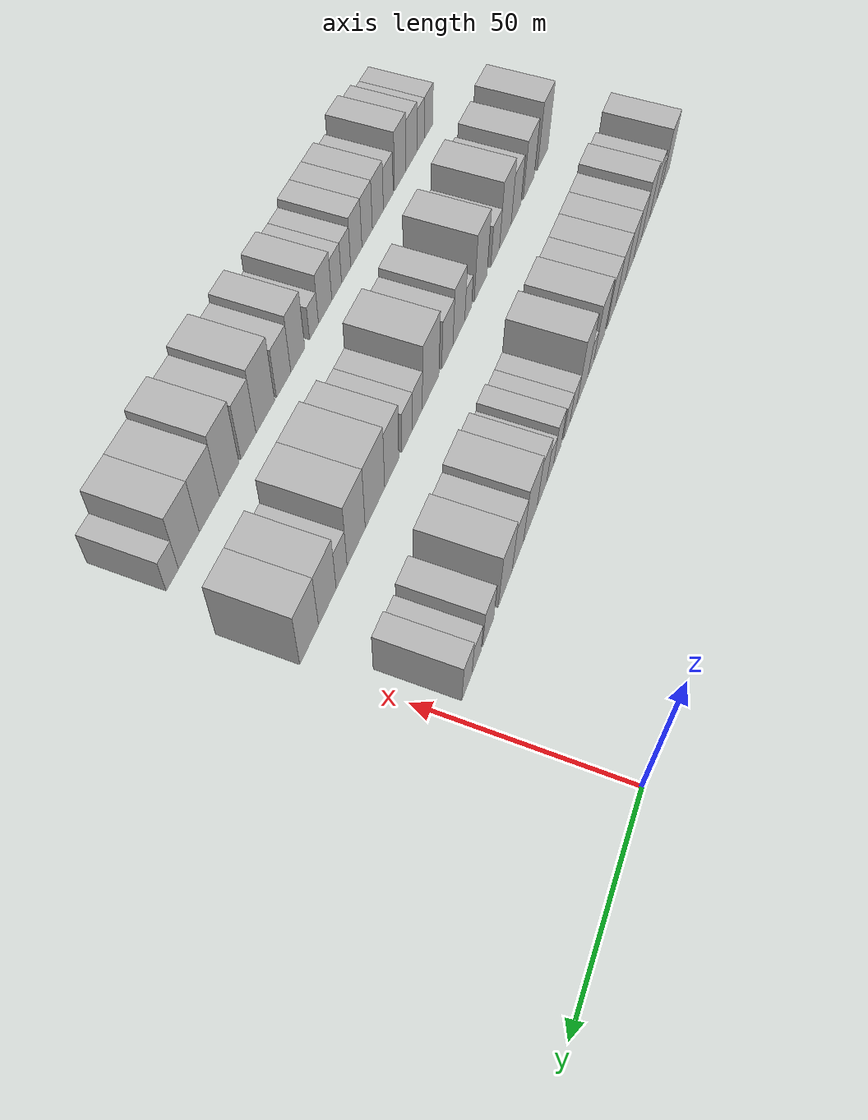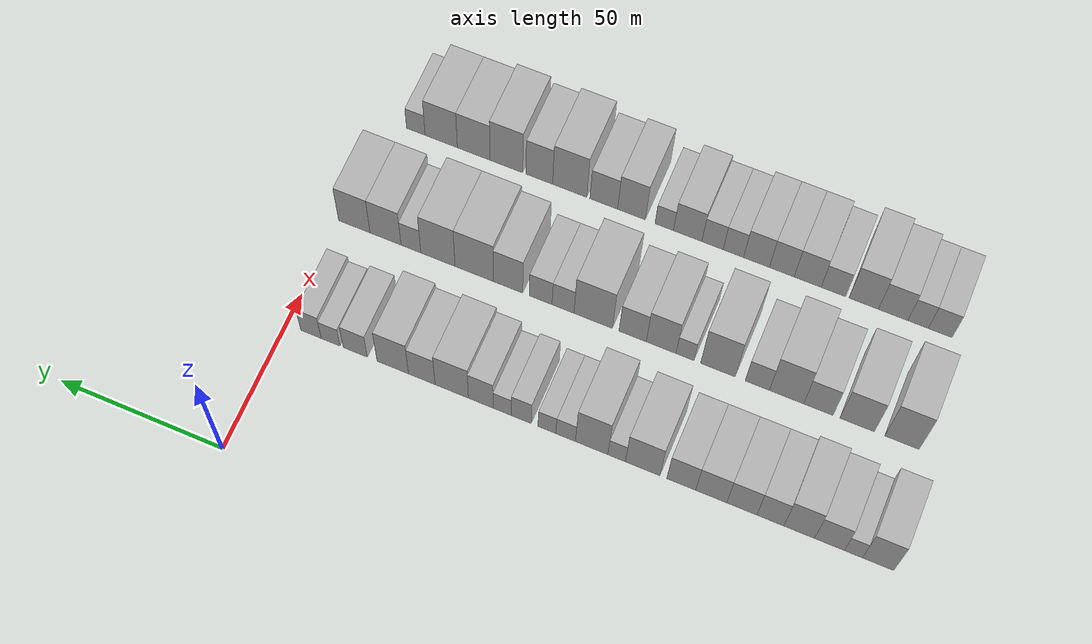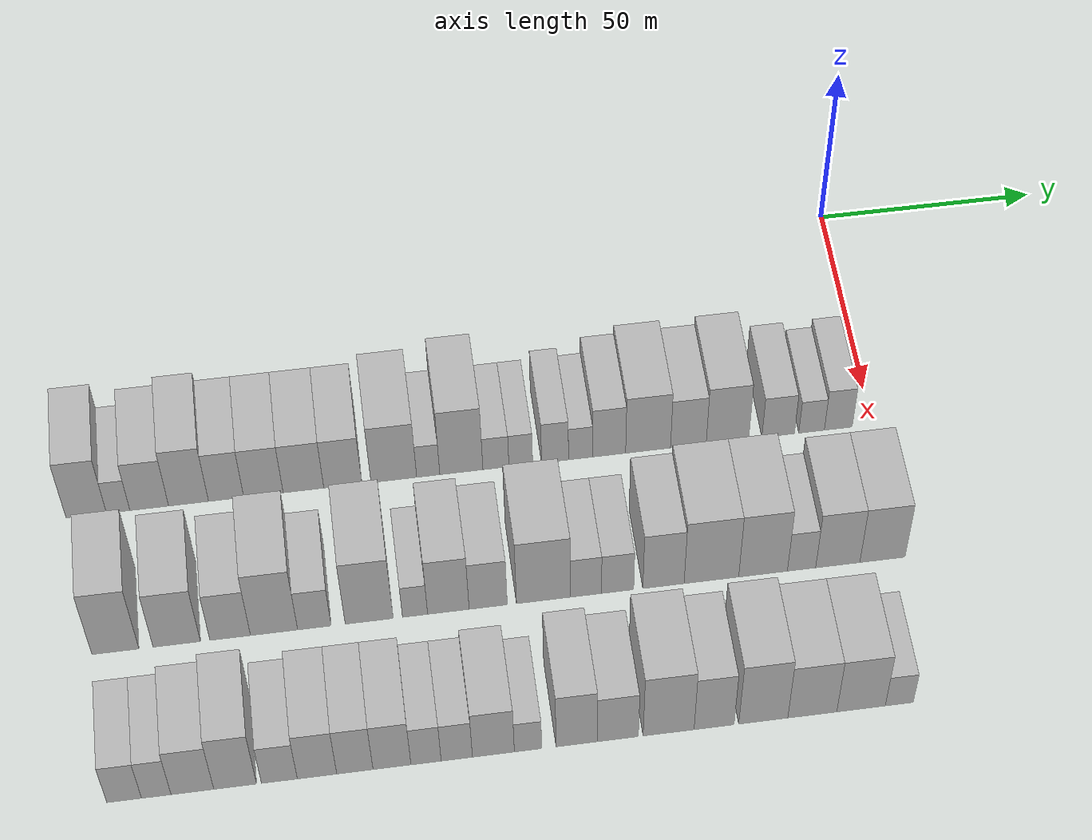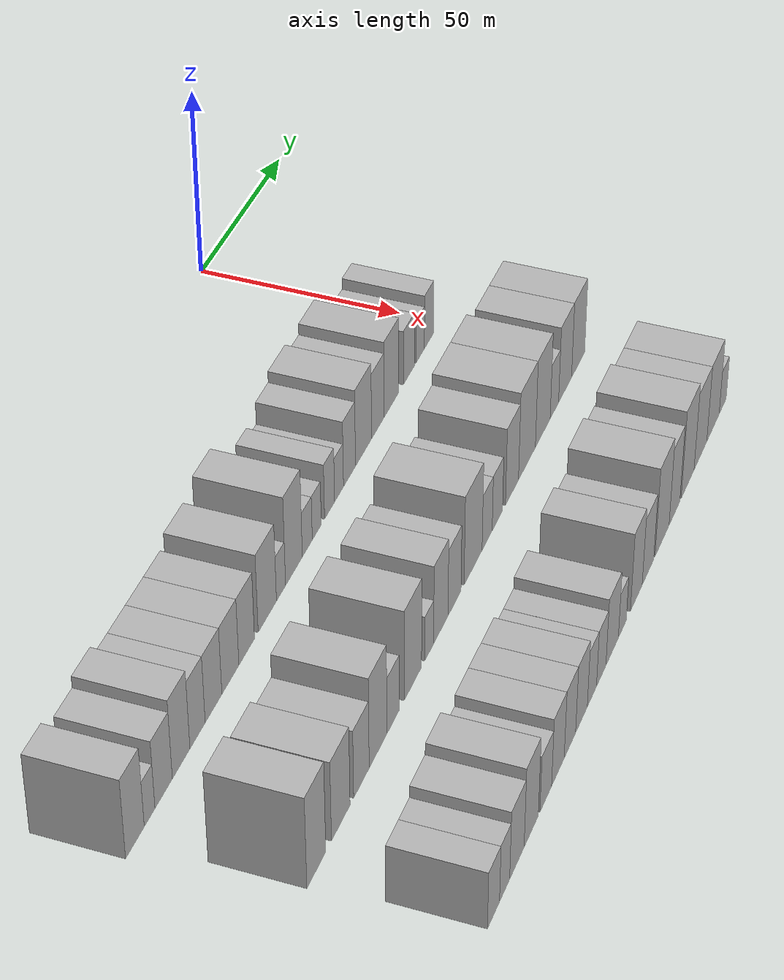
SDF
<sdf version="1.6">
 <world name="default">
  <model name="building_23">
   <static>1</static>
   <pose>50.0000 -175.4392 0 0.000000 0.000000 0.000000</pose>
   <link name="link">
    <pose>0 0 10.50 0 0 0</pose>
    <collision name="collision"><geometry><box><size>20.0000 8.8211 21.0000</size></box></geometry></collision>
    <visual name="visual">
     <cast_shadows>0</cast_shadows>
     <geometry><box><size>20.0000 8.8211 21.0000</size></box></geometry>
     <material>
      <script>
       <uri>model://HANNAS_wall/materials/scripts</uri>
       <uri>model://HANNAS_wall/materials/textures</uri>
       <name>vrc/HANNAS_wall</name>
      </script>
     </material>
    </visual>
   </link>
  </model>
  <model name="building_24">
   <static>1</static>
   <pose>50.0000 -168.4670 0 0.000000 0.000000 0.000000</pose>
   <link name="link">
    <pose>0 0 6.00 0 0 0</pose>
    <collision name="collision"><geometry><box><size>20.0000 5.1233 12.0000</size></box></geometry></collision>
    <visual name="visual">
     <cast_shadows>0</cast_shadows>
     <geometry><box><size>20.0000 5.1233 12.0000</size></box></geometry>
     <material>
      <script>
       <uri>model://HANNAS_wall/materials/scripts</uri>
       <uri>model://HANNAS_wall/materials/textures</uri>
       <name>vrc/HANNAS_wall</name>
      </script>
     </material>
    </visual>
   </link>
  </model>
  <model name="building_25">
   <static>1</static>
   <pose>50.0000 -161.6642 0 0.000000 0.000000 0.000000</pose>
   <link name="link">
    <pose>0 0 9.00 0 0 0</pose>
    <collision name="collision"><geometry><box><size>20.0000 8.4823 18.0000</size></box></geometry></collision>
    <visual name="visual">
     <cast_shadows>0</cast_shadows>
     <geometry><box><size>20.0000 8.4823 18.0000</size></box></geometry>
     <material>
      <script>
       <uri>model://HANNAS_wall/materials/scripts</uri>
       <uri>model://HANNAS_wall/materials/textures</uri>
       <name>vrc/HANNAS_wall</name>
      </script>
     </material>
    </visual>
   </link>
  </model>
  <model name="building_26">
   <static>1</static>
   <pose>50.0000 -153.0441 0 0.000000 0.000000 0.000000</pose>
   <link name="link">
    <pose>0 0 10.50 0 0 0</pose>
    <collision name="collision"><geometry><box><size>20.0000 8.7578 21.0000</size></box></geometry></collision>
    <visual name="visual">
     <cast_shadows>0</cast_shadows>
     <geometry><box><size>20.0000 8.7578 21.0000</size></box></geometry>
     <material>
      <script>
       <uri>model://HANNAS_wall/materials/scripts</uri>
       <uri>model://HANNAS_wall/materials/textures</uri>
       <name>vrc/HANNAS_wall</name>
      </script>
     </material>
    </visual>
   </link>
  </model>
  <model name="building_27">
   <static>1</static>
   <pose>50.0000 -144.7864 0 0.000000 0.000000 0.000000</pose>
   <link name="link">
    <pose>0 0 9.00 0 0 0</pose>
    <collision name="collision"><geometry><box><size>20.0000 7.7576 18.0000</size></box></geometry></collision>
    <visual name="visual">
     <cast_shadows>0</cast_shadows>
     <geometry><box><size>20.0000 7.7576 18.0000</size></box></geometry>
     <material>
      <script>
       <uri>model://HANNAS_wall/materials/scripts</uri>
       <uri>model://HANNAS_wall/materials/textures</uri>
       <name>vrc/HANNAS_wall</name>
      </script>
     </material>
    </visual>
   </link>
  </model>
  <model name="building_28">
   <static>1</static>
   <pose>50.0000 -136.5744 0 0.000000 0.000000 0.000000</pose>
   <link name="link">
    <pose>0 0 9.00 0 0 0</pose>
    <collision name="collision"><geometry><box><size>20.0000 8.6665 18.0000</size></box></geometry></collision>
    <visual name="visual">
     <cast_shadows>0</cast_shadows>
     <geometry><box><size>20.0000 8.6665 18.0000</size></box></geometry>
     <material>
      <script>
       <uri>model://HANNAS_wall/materials/scripts</uri>
       <uri>model://HANNAS_wall/materials/textures</uri>
       <name>vrc/HANNAS_wall</name>
      </script>
     </material>
    </visual>
   </link>
  </model>
  <model name="building_29">
   <static>1</static>
   <pose>50.0000 -127.7467 0 0.000000 0.000000 0.000000</pose>
   <link name="link">
    <pose>0 0 9.00 0 0 0</pose>
    <collision name="collision"><geometry><box><size>20.0000 8.9890 18.0000</size></box></geometry></collision>
    <visual name="visual">
     <cast_shadows>0</cast_shadows>
     <geometry><box><size>20.0000 8.9890 18.0000</size></box></geometry>
     <material>
      <script>
       <uri>model://HANNAS_wall/materials/scripts</uri>
       <uri>model://HANNAS_wall/materials/textures</uri>
       <name>vrc/HANNAS_wall</name>
      </script>
     </material>
    </visual>
   </link>
  </model>
  <model name="building_30">
   <static>1</static>
   <pose>50.0000 -119.0309 0 0.000000 0.000000 0.000000</pose>
   <link name="link">
    <pose>0 0 9.00 0 0 0</pose>
    <collision name="collision"><geometry><box><size>20.0000 8.4425 18.0000</size></box></geometry></collision>
    <visual name="visual">
     <cast_shadows>0</cast_shadows>
     <geometry><box><size>20.0000 8.4425 18.0000</size></box></geometry>
     <material>
      <script>
       <uri>model://HANNAS_wall/materials/scripts</uri>
       <uri>model://HANNAS_wall/materials/textures</uri>
       <name>vrc/HANNAS_wall</name>
      </script>
     </material>
    </visual>
   </link>
  </model>
  <model name="building_31">
   <static>1</static>
   <pose>50.0000 -107.7357 0 0.000000 0.000000 0.000000</pose>
   <link name="link">
    <pose>0 0 10.50 0 0 0</pose>
    <collision name="collision"><geometry><box><size>20.0000 10.1479 21.0000</size></box></geometry></collision>
    <visual name="visual">
     <cast_shadows>0</cast_shadows>
     <geometry><box><size>20.0000 10.1479 21.0000</size></box></geometry>
     <material>
      <script>
       <uri>model://HANNAS_wall/materials/scripts</uri>
       <uri>model://HANNAS_wall/materials/textures</uri>
       <name>vrc/HANNAS_wall</name>
      </script>
     </material>
    </visual>
   </link>
  </model>
  <model name="building_32">
   <static>1</static>
   <pose>50.0000 -100.0869 0 0.000000 0.000000 0.000000</pose>
   <link name="link">
    <pose>0 0 6.00 0 0 0</pose>
    <collision name="collision"><geometry><box><size>20.0000 5.1497 12.0000</size></box></geometry></collision>
    <visual name="visual">
     <cast_shadows>0</cast_shadows>
     <geometry><box><size>20.0000 5.1497 12.0000</size></box></geometry>
     <material>
      <script>
       <uri>model://HANNAS_wall/materials/scripts</uri>
       <uri>model://HANNAS_wall/materials/textures</uri>
       <name>vrc/HANNAS_wall</name>
      </script>
     </material>
    </visual>
   </link>
  </model>
  <model name="building_33">
   <static>1</static>
   <pose>50.0000 -92.7052 0 0.000000 0.000000 0.000000</pose>
   <link name="link">
    <pose>0 0 12.00 0 0 0</pose>
    <collision name="collision"><geometry><box><size>20.0000 9.6137 24.0000</size></box></geometry></collision>
    <visual name="visual">
     <cast_shadows>0</cast_shadows>
     <geometry><box><size>20.0000 9.6137 24.0000</size></box></geometry>
     <material>
      <script>
       <uri>model://HANNAS_wall/materials/scripts</uri>
       <uri>model://HANNAS_wall/materials/textures</uri>
       <name>vrc/HANNAS_wall</name>
      </script>
     </material>
    </visual>
   </link>
  </model>
  <model name="building_34">
   <static>1</static>
   <pose>50.0000 -84.9929 0 0.000000 0.000000 0.000000</pose>
   <link name="link">
    <pose>0 0 6.00 0 0 0</pose>
    <collision name="collision"><geometry><box><size>20.0000 5.8108 12.0000</size></box></geometry></collision>
    <visual name="visual">
     <cast_shadows>0</cast_shadows>
     <geometry><box><size>20.0000 5.8108 12.0000</size></box></geometry>
     <material>
      <script>
       <uri>model://HANNAS_wall/materials/scripts</uri>
       <uri>model://HANNAS_wall/materials/textures</uri>
       <name>vrc/HANNAS_wall</name>
      </script>
     </material>
    </visual>
   </link>
  </model>
  <model name="building_35">
   <static>1</static>
   <pose>50.0000 -79.4338 0 0.000000 0.000000 0.000000</pose>
   <link name="link">
    <pose>0 0 6.00 0 0 0</pose>
    <collision name="collision"><geometry><box><size>20.0000 5.3074 12.0000</size></box></geometry></collision>
    <visual name="visual">
     <cast_shadows>0</cast_shadows>
     <geometry><box><size>20.0000 5.3074 12.0000</size></box></geometry>
     <material>
      <script>
       <uri>model://HANNAS_wall/materials/scripts</uri>
       <uri>model://HANNAS_wall/materials/textures</uri>
       <name>vrc/HANNAS_wall</name>
      </script>
     </material>
    </visual>
   </link>
  </model>
  <model name="building_36">
   <static>1</static>
   <pose>50.0000 -71.7630 0 0.000000 0.000000 0.000000</pose>
   <link name="link">
    <pose>0 0 7.50 0 0 0</pose>
    <collision name="collision"><geometry><box><size>20.0000 6.0342 15.0000</size></box></geometry></collision>
    <visual name="visual">
     <cast_shadows>0</cast_shadows>
     <geometry><box><size>20.0000 6.0342 15.0000</size></box></geometry>
     <material>
      <script>
       <uri>model://HANNAS_wall/materials/scripts</uri>
       <uri>model://HANNAS_wall/materials/textures</uri>
       <name>vrc/HANNAS_wall</name>
      </script>
     </material>
    </visual>
   </link>
  </model>
  <model name="building_37">
   <static>1</static>
   <pose>50.0000 -66.0414 0 0.000000 0.000000 0.000000</pose>
   <link name="link">
    <pose>0 0 6.00 0 0 0</pose>
    <collision name="collision"><geometry><box><size>20.0000 5.4089 12.0000</size></box></geometry></collision>
    <visual name="visual">
     <cast_shadows>0</cast_shadows>
     <geometry><box><size>20.0000 5.4089 12.0000</size></box></geometry>
     <material>
      <script>
       <uri>model://HANNAS_wall/materials/scripts</uri>
       <uri>model://HANNAS_wall/materials/textures</uri>
       <name>vrc/HANNAS_wall</name>
      </script>
     </material>
    </visual>
   </link>
  </model>
  <model name="building_38">
   <static>1</static>
   <pose>50.0000 -59.6178 0 0.000000 0.000000 0.000000</pose>
   <link name="link">
    <pose>0 0 9.00 0 0 0</pose>
    <collision name="collision"><geometry><box><size>20.0000 7.4382 18.0000</size></box></geometry></collision>
    <visual name="visual">
     <cast_shadows>0</cast_shadows>
     <geometry><box><size>20.0000 7.4382 18.0000</size></box></geometry>
     <material>
      <script>
       <uri>model://HANNAS_wall/materials/scripts</uri>
       <uri>model://HANNAS_wall/materials/textures</uri>
       <name>vrc/HANNAS_wall</name>
      </script>
     </material>
    </visual>
   </link>
  </model>
  <model name="building_39">
   <static>1</static>
   <pose>50.0000 -50.8414 0 0.000000 0.000000 0.000000</pose>
   <link name="link">
    <pose>0 0 10.50 0 0 0</pose>
    <collision name="collision"><geometry><box><size>20.0000 10.1146 21.0000</size></box></geometry></collision>
    <visual name="visual">
     <cast_shadows>0</cast_shadows>
     <geometry><box><size>20.0000 10.1146 21.0000</size></box></geometry>
     <material>
      <script>
       <uri>model://HANNAS_wall/materials/scripts</uri>
       <uri>model://HANNAS_wall/materials/textures</uri>
       <name>vrc/HANNAS_wall</name>
      </script>
     </material>
    </visual>
   </link>
  </model>
  <model name="building_40">
   <static>1</static>
   <pose>50.0000 -41.7436 0 0.000000 0.000000 0.000000</pose>
   <link name="link">
    <pose>0 0 9.00 0 0 0</pose>
    <collision name="collision"><geometry><box><size>20.0000 8.0809 18.0000</size></box></geometry></collision>
    <visual name="visual">
     <cast_shadows>0</cast_shadows>
     <geometry><box><size>20.0000 8.0809 18.0000</size></box></geometry>
     <material>
      <script>
       <uri>model://HANNAS_wall/materials/scripts</uri>
       <uri>model://HANNAS_wall/materials/textures</uri>
       <name>vrc/HANNAS_wall</name>
      </script>
     </material>
    </visual>
   </link>
  </model>
  <model name="building_41">
   <static>1</static>
   <pose>50.0000 -32.8916 0 0.000000 0.000000 0.000000</pose>
   <link name="link">
    <pose>0 0 10.50 0 0 0</pose>
    <collision name="collision"><geometry><box><size>20.0000 9.6231 21.0000</size></box></geometry></collision>
    <visual name="visual">
     <cast_shadows>0</cast_shadows>
     <geometry><box><size>20.0000 9.6231 21.0000</size></box></geometry>
     <material>
      <script>
       <uri>model://HANNAS_wall/materials/scripts</uri>
       <uri>model://HANNAS_wall/materials/textures</uri>
       <name>vrc/HANNAS_wall</name>
      </script>
     </material>
    </visual>
   </link>
  </model>
  <model name="building_42">
   <static>1</static>
   <pose>50.0000 -21.3839 0 0.000000 0.000000 0.000000</pose>
   <link name="link">
    <pose>0 0 7.50 0 0 0</pose>
    <collision name="collision"><geometry><box><size>20.0000 7.3924 15.0000</size></box></geometry></collision>
    <visual name="visual">
     <cast_shadows>0</cast_shadows>
     <geometry><box><size>20.0000 7.3924 15.0000</size></box></geometry>
     <material>
      <script>
       <uri>model://HANNAS_wall/materials/scripts</uri>
       <uri>model://HANNAS_wall/materials/textures</uri>
       <name>vrc/HANNAS_wall</name>
      </script>
     </material>
    </visual>
   </link>
  </model>
  <model name="building_43">
   <static>1</static>
   <pose>50.0000 -13.7797 0 0.000000 0.000000 0.000000</pose>
   <link name="link">
    <pose>0 0 6.00 0 0 0</pose>
    <collision name="collision"><geometry><box><size>20.0000 5.8159 12.0000</size></box></geometry></collision>
    <visual name="visual">
     <cast_shadows>0</cast_shadows>
     <geometry><box><size>20.0000 5.8159 12.0000</size></box></geometry>
     <material>
      <script>
       <uri>model://HANNAS_wall/materials/scripts</uri>
       <uri>model://HANNAS_wall/materials/textures</uri>
       <name>vrc/HANNAS_wall</name>
      </script>
     </material>
    </visual>
   </link>
  </model>
  <model name="building_44">
   <static>1</static>
   <pose>50.0000 -7.6938 0 0.000000 0.000000 0.000000</pose>
   <link name="link">
    <pose>0 0 7.50 0 0 0</pose>
    <collision name="collision"><geometry><box><size>20.0000 6.3559 15.0000</size></box></geometry></collision>
    <visual name="visual">
     <cast_shadows>0</cast_shadows>
     <geometry><box><size>20.0000 6.3559 15.0000</size></box></geometry>
     <material>
      <script>
       <uri>model://HANNAS_wall/materials/scripts</uri>
       <uri>model://HANNAS_wall/materials/textures</uri>
       <name>vrc/HANNAS_wall</name>
      </script>
     </material>
    </visual>
   </link>
  </model>
  <model name="building_109">
   <static>1</static>
   <pose>85.0000 -170.3287 0 0.000000 0.000000 0.000000</pose>
   <link name="link">
    <pose>0 0 12.00 0 0 0</pose>
    <collision name="collision"><geometry><box><size>20.0000 9.9184 24.0000</size></box></geometry></collision>
    <visual name="visual">
     <cast_shadows>0</cast_shadows>
     <geometry><box><size>20.0000 9.9184 24.0000</size></box></geometry>
     <material>
      <script>
       <uri>model://HANNAS_wall/materials/scripts</uri>
       <uri>model://HANNAS_wall/materials/textures</uri>
       <name>vrc/HANNAS_wall</name>
      </script>
     </material>
    </visual>
   </link>
  </model>
  <model name="building_110">
   <static>1</static>
   <pose>85.0000 -157.3529 0 0.000000 0.000000 0.000000</pose>
   <link name="link">
    <pose>0 0 10.50 0 0 0</pose>
    <collision name="collision"><geometry><box><size>20.0000 10.0331 21.0000</size></box></geometry></collision>
    <visual name="visual">
     <cast_shadows>0</cast_shadows>
     <geometry><box><size>20.0000 10.0331 21.0000</size></box></geometry>
     <material>
      <script>
       <uri>model://HANNAS_wall/materials/scripts</uri>
       <uri>model://HANNAS_wall/materials/textures</uri>
       <name>vrc/HANNAS_wall</name>
      </script>
     </material>
    </visual>
   </link>
  </model>
  <model name="building_111">
   <static>1</static>
   <pose>85.0000 -146.0318 0 0.000000 0.000000 0.000000</pose>
   <link name="link">
    <pose>0 0 9.00 0 0 0</pose>
    <collision name="collision"><geometry><box><size>20.0000 8.6090 18.0000</size></box></geometry></collision>
    <visual name="visual">
     <cast_shadows>0</cast_shadows>
     <geometry><box><size>20.0000 8.6090 18.0000</size></box></geometry>
     <material>
      <script>
       <uri>model://HANNAS_wall/materials/scripts</uri>
       <uri>model://HANNAS_wall/materials/textures</uri>
       <name>vrc/HANNAS_wall</name>
      </script>
     </material>
    </visual>
   </link>
  </model>
  <model name="building_112">
   <static>1</static>
   <pose>85.0000 -136.7033 0 0.000000 0.000000 0.000000</pose>
   <link name="link">
    <pose>0 0 12.00 0 0 0</pose>
    <collision name="collision"><geometry><box><size>20.0000 10.0480 24.0000</size></box></geometry></collision>
    <visual name="visual">
     <cast_shadows>0</cast_shadows>
     <geometry><box><size>20.0000 10.0480 24.0000</size></box></geometry>
     <material>
      <script>
       <uri>model://HANNAS_wall/materials/scripts</uri>
       <uri>model://HANNAS_wall/materials/textures</uri>
       <name>vrc/HANNAS_wall</name>
      </script>
     </material>
    </visual>
   </link>
  </model>
  <model name="building_113">
   <static>1</static>
   <pose>85.0000 -128.1005 0 0.000000 0.000000 0.000000</pose>
   <link name="link">
    <pose>0 0 7.50 0 0 0</pose>
    <collision name="collision"><geometry><box><size>20.0000 7.1576 15.0000</size></box></geometry></collision>
    <visual name="visual">
     <cast_shadows>0</cast_shadows>
     <geometry><box><size>20.0000 7.1576 15.0000</size></box></geometry>
     <material>
      <script>
       <uri>model://HANNAS_wall/materials/scripts</uri>
       <uri>model://HANNAS_wall/materials/textures</uri>
       <name>vrc/HANNAS_wall</name>
      </script>
     </material>
    </visual>
   </link>
  </model>
  <model name="building_114">
   <static>1</static>
   <pose>85.0000 -116.3873 0 0.000000 0.000000 0.000000</pose>
   <link name="link">
    <pose>0 0 12.00 0 0 0</pose>
    <collision name="collision"><geometry><box><size>20.0000 10.2689 24.0000</size></box></geometry></collision>
    <visual name="visual">
     <cast_shadows>0</cast_shadows>
     <geometry><box><size>20.0000 10.2689 24.0000</size></box></geometry>
     <material>
      <script>
       <uri>model://HANNAS_wall/materials/scripts</uri>
       <uri>model://HANNAS_wall/materials/textures</uri>
       <name>vrc/HANNAS_wall</name>
      </script>
     </material>
    </visual>
   </link>
  </model>
  <model name="building_115">
   <static>1</static>
   <pose>85.0000 -106.5623 0 0.000000 0.000000 0.000000</pose>
   <link name="link">
    <pose>0 0 6.00 0 0 0</pose>
    <collision name="collision"><geometry><box><size>20.0000 5.3810 12.0000</size></box></geometry></collision>
    <visual name="visual">
     <cast_shadows>0</cast_shadows>
     <geometry><box><size>20.0000 5.3810 12.0000</size></box></geometry>
     <material>
      <script>
       <uri>model://HANNAS_wall/materials/scripts</uri>
       <uri>model://HANNAS_wall/materials/textures</uri>
       <name>vrc/HANNAS_wall</name>
      </script>
     </material>
    </visual>
   </link>
  </model>
  <model name="building_116">
   <static>1</static>
   <pose>85.0000 -99.4042 0 0.000000 0.000000 0.000000</pose>
   <link name="link">
    <pose>0 0 10.50 0 0 0</pose>
    <collision name="collision"><geometry><box><size>20.0000 8.9353 21.0000</size></box></geometry></collision>
    <visual name="visual">
     <cast_shadows>0</cast_shadows>
     <geometry><box><size>20.0000 8.9353 21.0000</size></box></geometry>
     <material>
      <script>
       <uri>model://HANNAS_wall/materials/scripts</uri>
       <uri>model://HANNAS_wall/materials/textures</uri>
       <name>vrc/HANNAS_wall</name>
      </script>
     </material>
    </visual>
   </link>
  </model>
  <model name="building_117">
   <static>1</static>
   <pose>85.0000 -90.8245 0 0.000000 0.000000 0.000000</pose>
   <link name="link">
    <pose>0 0 9.00 0 0 0</pose>
    <collision name="collision"><geometry><box><size>20.0000 8.2241 18.0000</size></box></geometry></collision>
    <visual name="visual">
     <cast_shadows>0</cast_shadows>
     <geometry><box><size>20.0000 8.2241 18.0000</size></box></geometry>
     <material>
      <script>
       <uri>model://HANNAS_wall/materials/scripts</uri>
       <uri>model://HANNAS_wall/materials/textures</uri>
       <name>vrc/HANNAS_wall</name>
      </script>
     </material>
    </visual>
   </link>
  </model>
  <model name="building_118">
   <static>1</static>
   <pose>85.0000 -78.8649 0 0.000000 0.000000 0.000000</pose>
   <link name="link">
    <pose>0 0 12.00 0 0 0</pose>
    <collision name="collision"><geometry><box><size>20.0000 11.6950 24.0000</size></box></geometry></collision>
    <visual name="visual">
     <cast_shadows>0</cast_shadows>
     <geometry><box><size>20.0000 11.6950 24.0000</size></box></geometry>
     <material>
      <script>
       <uri>model://HANNAS_wall/materials/scripts</uri>
       <uri>model://HANNAS_wall/materials/textures</uri>
       <name>vrc/HANNAS_wall</name>
      </script>
     </material>
    </visual>
   </link>
  </model>
  <model name="building_119">
   <static>1</static>
   <pose>85.0000 -69.6610 0 0.000000 0.000000 0.000000</pose>
   <link name="link">
    <pose>0 0 7.50 0 0 0</pose>
    <collision name="collision"><geometry><box><size>20.0000 6.7129 15.0000</size></box></geometry></collision>
    <visual name="visual">
     <cast_shadows>0</cast_shadows>
     <geometry><box><size>20.0000 6.7129 15.0000</size></box></geometry>
     <material>
      <script>
       <uri>model://HANNAS_wall/materials/scripts</uri>
       <uri>model://HANNAS_wall/materials/textures</uri>
       <name>vrc/HANNAS_wall</name>
      </script>
     </material>
    </visual>
   </link>
  </model>
  <model name="building_120">
   <static>1</static>
   <pose>85.0000 -62.8131 0 0.000000 0.000000 0.000000</pose>
   <link name="link">
    <pose>0 0 7.50 0 0 0</pose>
    <collision name="collision"><geometry><box><size>20.0000 6.9829 15.0000</size></box></geometry></collision>
    <visual name="visual">
     <cast_shadows>0</cast_shadows>
     <geometry><box><size>20.0000 6.9829 15.0000</size></box></geometry>
     <material>
      <script>
       <uri>model://HANNAS_wall/materials/scripts</uri>
       <uri>model://HANNAS_wall/materials/textures</uri>
       <name>vrc/HANNAS_wall</name>
      </script>
     </material>
    </visual>
   </link>
  </model>
  <model name="building_121">
   <static>1</static>
   <pose>85.0000 -52.8237 0 0.000000 0.000000 0.000000</pose>
   <link name="link">
    <pose>0 0 10.50 0 0 0</pose>
    <collision name="collision"><geometry><box><size>20.0000 8.9958 21.0000</size></box></geometry></collision>
    <visual name="visual">
     <cast_shadows>0</cast_shadows>
     <geometry><box><size>20.0000 8.9958 21.0000</size></box></geometry>
     <material>
      <script>
       <uri>model://HANNAS_wall/materials/scripts</uri>
       <uri>model://HANNAS_wall/materials/textures</uri>
       <name>vrc/HANNAS_wall</name>
      </script>
     </material>
    </visual>
   </link>
  </model>
  <model name="building_122">
   <static>1</static>
   <pose>85.0000 -42.3609 0 0.000000 0.000000 0.000000</pose>
   <link name="link">
    <pose>0 0 12.00 0 0 0</pose>
    <collision name="collision"><geometry><box><size>20.0000 11.9298 24.0000</size></box></geometry></collision>
    <visual name="visual">
     <cast_shadows>0</cast_shadows>
     <geometry><box><size>20.0000 11.9298 24.0000</size></box></geometry>
     <material>
      <script>
       <uri>model://HANNAS_wall/materials/scripts</uri>
       <uri>model://HANNAS_wall/materials/textures</uri>
       <name>vrc/HANNAS_wall</name>
      </script>
     </material>
    </visual>
   </link>
  </model>
  <model name="building_123">
   <static>1</static>
   <pose>85.0000 -31.0570 0 0.000000 0.000000 0.000000</pose>
   <link name="link">
    <pose>0 0 12.00 0 0 0</pose>
    <collision name="collision"><geometry><box><size>20.0000 10.6778 24.0000</size></box></geometry></collision>
    <visual name="visual">
     <cast_shadows>0</cast_shadows>
     <geometry><box><size>20.0000 10.6778 24.0000</size></box></geometry>
     <material>
      <script>
       <uri>model://HANNAS_wall/materials/scripts</uri>
       <uri>model://HANNAS_wall/materials/textures</uri>
       <name>vrc/HANNAS_wall</name>
      </script>
     </material>
    </visual>
   </link>
  </model>
  <model name="building_124">
   <static>1</static>
   <pose>85.0000 -22.6110 0 0.000000 0.000000 0.000000</pose>
   <link name="link">
    <pose>0 0 7.50 0 0 0</pose>
    <collision name="collision"><geometry><box><size>20.0000 6.2142 15.0000</size></box></geometry></collision>
    <visual name="visual">
     <cast_shadows>0</cast_shadows>
     <geometry><box><size>20.0000 6.2142 15.0000</size></box></geometry>
     <material>
      <script>
       <uri>model://HANNAS_wall/materials/scripts</uri>
       <uri>model://HANNAS_wall/materials/textures</uri>
       <name>vrc/HANNAS_wall</name>
      </script>
     </material>
    </visual>
   </link>
  </model>
  <model name="building_125">
   <static>1</static>
   <pose>85.0000 -14.6379 0 0.000000 0.000000 0.000000</pose>
   <link name="link">
    <pose>0 0 10.50 0 0 0</pose>
    <collision name="collision"><geometry><box><size>20.0000 9.7320 21.0000</size></box></geometry></collision>
    <visual name="visual">
     <cast_shadows>0</cast_shadows>
     <geometry><box><size>20.0000 9.7320 21.0000</size></box></geometry>
     <material>
      <script>
       <uri>model://HANNAS_wall/materials/scripts</uri>
       <uri>model://HANNAS_wall/materials/textures</uri>
       <name>vrc/HANNAS_wall</name>
      </script>
     </material>
    </visual>
   </link>
  </model>
  <model name="building_126">
   <static>1</static>
   <pose>85.0000 -4.7849 0 0.000000 0.000000 0.000000</pose>
   <link name="link">
    <pose>0 0 10.50 0 0 0</pose>
    <collision name="collision"><geometry><box><size>20.0000 9.9741 21.0000</size></box></geometry></collision>
    <visual name="visual">
     <cast_shadows>0</cast_shadows>
     <geometry><box><size>20.0000 9.9741 21.0000</size></box></geometry>
     <material>
      <script>
       <uri>model://HANNAS_wall/materials/scripts</uri>
       <uri>model://HANNAS_wall/materials/textures</uri>
       <name>vrc/HANNAS_wall</name>
      </script>
     </material>
    </visual>
   </link>
  </model>
  <model name="building_176">
   <static>1</static>
   <pose>120.0000 -169.7988 0 0.000000 0.000000 0.000000</pose>
   <link name="link">
    <pose>0 0 7.50 0 0 0</pose>
    <collision name="collision"><geometry><box><size>20.0000 7.0481 15.0000</size></box></geometry></collision>
    <visual name="visual">
     <cast_shadows>0</cast_shadows>
     <geometry><box><size>20.0000 7.0481 15.0000</size></box></geometry>
     <material>
      <script>
       <uri>model://HANNAS_wall/materials/scripts</uri>
       <uri>model://HANNAS_wall/materials/textures</uri>
       <name>vrc/HANNAS_wall</name>
      </script>
     </material>
    </visual>
   </link>
  </model>
  <model name="building_177">
   <static>1</static>
   <pose>120.0000 -163.2622 0 0.000000 0.000000 0.000000</pose>
   <link name="link">
    <pose>0 0 7.50 0 0 0</pose>
    <collision name="collision"><geometry><box><size>20.0000 6.0252 15.0000</size></box></geometry></collision>
    <visual name="visual">
     <cast_shadows>0</cast_shadows>
     <geometry><box><size>20.0000 6.0252 15.0000</size></box></geometry>
     <material>
      <script>
       <uri>model://HANNAS_wall/materials/scripts</uri>
       <uri>model://HANNAS_wall/materials/textures</uri>
       <name>vrc/HANNAS_wall</name>
      </script>
     </material>
    </visual>
   </link>
  </model>
  <model name="building_178">
   <static>1</static>
   <pose>120.0000 -155.8833 0 0.000000 0.000000 0.000000</pose>
   <link name="link">
    <pose>0 0 9.00 0 0 0</pose>
    <collision name="collision"><geometry><box><size>20.0000 8.7326 18.0000</size></box></geometry></collision>
    <visual name="visual">
     <cast_shadows>0</cast_shadows>
     <geometry><box><size>20.0000 8.7326 18.0000</size></box></geometry>
     <material>
      <script>
       <uri>model://HANNAS_wall/materials/scripts</uri>
       <uri>model://HANNAS_wall/materials/textures</uri>
       <name>vrc/HANNAS_wall</name>
      </script>
     </material>
    </visual>
   </link>
  </model>
  <model name="building_179">
   <static>1</static>
   <pose>120.0000 -147.1377 0 0.000000 0.000000 0.000000</pose>
   <link name="link">
    <pose>0 0 10.50 0 0 0</pose>
    <collision name="collision"><geometry><box><size>20.0000 8.7587 21.0000</size></box></geometry></collision>
    <visual name="visual">
     <cast_shadows>0</cast_shadows>
     <geometry><box><size>20.0000 8.7587 21.0000</size></box></geometry>
     <material>
      <script>
       <uri>model://HANNAS_wall/materials/scripts</uri>
       <uri>model://HANNAS_wall/materials/textures</uri>
       <name>vrc/HANNAS_wall</name>
      </script>
     </material>
    </visual>
   </link>
  </model>
  <model name="building_180">
   <static>1</static>
   <pose>120.0000 -138.0737 0 0.000000 0.000000 0.000000</pose>
   <link name="link">
    <pose>0 0 7.50 0 0 0</pose>
    <collision name="collision"><geometry><box><size>20.0000 7.3692 15.0000</size></box></geometry></collision>
    <visual name="visual">
     <cast_shadows>0</cast_shadows>
     <geometry><box><size>20.0000 7.3692 15.0000</size></box></geometry>
     <material>
      <script>
       <uri>model://HANNAS_wall/materials/scripts</uri>
       <uri>model://HANNAS_wall/materials/textures</uri>
       <name>vrc/HANNAS_wall</name>
      </script>
     </material>
    </visual>
   </link>
  </model>
  <model name="building_181">
   <static>1</static>
   <pose>120.0000 -130.3346 0 0.000000 0.000000 0.000000</pose>
   <link name="link">
    <pose>0 0 9.00 0 0 0</pose>
    <collision name="collision"><geometry><box><size>20.0000 8.1090 18.0000</size></box></geometry></collision>
    <visual name="visual">
     <cast_shadows>0</cast_shadows>
     <geometry><box><size>20.0000 8.1090 18.0000</size></box></geometry>
     <material>
      <script>
       <uri>model://HANNAS_wall/materials/scripts</uri>
       <uri>model://HANNAS_wall/materials/textures</uri>
       <name>vrc/HANNAS_wall</name>
      </script>
     </material>
    </visual>
   </link>
  </model>
  <model name="building_182">
   <static>1</static>
   <pose>120.0000 -122.5364 0 0.000000 0.000000 0.000000</pose>
   <link name="link">
    <pose>0 0 9.00 0 0 0</pose>
    <collision name="collision"><geometry><box><size>20.0000 7.4874 18.0000</size></box></geometry></collision>
    <visual name="visual">
     <cast_shadows>0</cast_shadows>
     <geometry><box><size>20.0000 7.4874 18.0000</size></box></geometry>
     <material>
      <script>
       <uri>model://HANNAS_wall/materials/scripts</uri>
       <uri>model://HANNAS_wall/materials/textures</uri>
       <name>vrc/HANNAS_wall</name>
      </script>
     </material>
    </visual>
   </link>
  </model>
  <model name="building_183">
   <static>1</static>
   <pose>120.0000 -114.8702 0 0.000000 0.000000 0.000000</pose>
   <link name="link">
    <pose>0 0 9.00 0 0 0</pose>
    <collision name="collision"><geometry><box><size>20.0000 7.8450 18.0000</size></box></geometry></collision>
    <visual name="visual">
     <cast_shadows>0</cast_shadows>
     <geometry><box><size>20.0000 7.8450 18.0000</size></box></geometry>
     <material>
      <script>
       <uri>model://HANNAS_wall/materials/scripts</uri>
       <uri>model://HANNAS_wall/materials/textures</uri>
       <name>vrc/HANNAS_wall</name>
      </script>
     </material>
    </visual>
   </link>
  </model>
  <model name="building_184">
   <static>1</static>
   <pose>120.0000 -107.8199 0 0.000000 0.000000 0.000000</pose>
   <link name="link">
    <pose>0 0 7.50 0 0 0</pose>
    <collision name="collision"><geometry><box><size>20.0000 6.2554 15.0000</size></box></geometry></collision>
    <visual name="visual">
     <cast_shadows>0</cast_shadows>
     <geometry><box><size>20.0000 6.2554 15.0000</size></box></geometry>
     <material>
      <script>
       <uri>model://HANNAS_wall/materials/scripts</uri>
       <uri>model://HANNAS_wall/materials/textures</uri>
       <name>vrc/HANNAS_wall</name>
      </script>
     </material>
    </visual>
   </link>
  </model>
  <model name="building_185">
   <static>1</static>
   <pose>120.0000 -101.4493 0 0.000000 0.000000 0.000000</pose>
   <link name="link">
    <pose>0 0 7.50 0 0 0</pose>
    <collision name="collision"><geometry><box><size>20.0000 6.4857 15.0000</size></box></geometry></collision>
    <visual name="visual">
     <cast_shadows>0</cast_shadows>
     <geometry><box><size>20.0000 6.4857 15.0000</size></box></geometry>
     <material>
      <script>
       <uri>model://HANNAS_wall/materials/scripts</uri>
       <uri>model://HANNAS_wall/materials/textures</uri>
       <name>vrc/HANNAS_wall</name>
      </script>
     </material>
    </visual>
   </link>
  </model>
  <model name="building_186">
   <static>1</static>
   <pose>120.0000 -93.8430 0 0.000000 0.000000 0.000000</pose>
   <link name="link">
    <pose>0 0 9.00 0 0 0</pose>
    <collision name="collision"><geometry><box><size>20.0000 8.7269 18.0000</size></box></geometry></collision>
    <visual name="visual">
     <cast_shadows>0</cast_shadows>
     <geometry><box><size>20.0000 8.7269 18.0000</size></box></geometry>
     <material>
      <script>
       <uri>model://HANNAS_wall/materials/scripts</uri>
       <uri>model://HANNAS_wall/materials/textures</uri>
       <name>vrc/HANNAS_wall</name>
      </script>
     </material>
    </visual>
   </link>
  </model>
  <model name="building_187">
   <static>1</static>
   <pose>120.0000 -86.6327 0 0.000000 0.000000 0.000000</pose>
   <link name="link">
    <pose>0 0 6.00 0 0 0</pose>
    <collision name="collision"><geometry><box><size>20.0000 5.6938 12.0000</size></box></geometry></collision>
    <visual name="visual">
     <cast_shadows>0</cast_shadows>
     <geometry><box><size>20.0000 5.6938 12.0000</size></box></geometry>
     <material>
      <script>
       <uri>model://HANNAS_wall/materials/scripts</uri>
       <uri>model://HANNAS_wall/materials/textures</uri>
       <name>vrc/HANNAS_wall</name>
      </script>
     </material>
    </visual>
   </link>
  </model>
  <model name="building_188">
   <static>1</static>
   <pose>120.0000 -76.4862 0 0.000000 0.000000 0.000000</pose>
   <link name="link">
    <pose>0 0 10.50 0 0 0</pose>
    <collision name="collision"><geometry><box><size>20.0000 8.5991 21.0000</size></box></geometry></collision>
    <visual name="visual">
     <cast_shadows>0</cast_shadows>
     <geometry><box><size>20.0000 8.5991 21.0000</size></box></geometry>
     <material>
      <script>
       <uri>model://HANNAS_wall/materials/scripts</uri>
       <uri>model://HANNAS_wall/materials/textures</uri>
       <name>vrc/HANNAS_wall</name>
      </script>
     </material>
    </visual>
   </link>
  </model>
  <model name="building_189">
   <static>1</static>
   <pose>120.0000 -67.8780 0 0.000000 0.000000 0.000000</pose>
   <link name="link">
    <pose>0 0 9.00 0 0 0</pose>
    <collision name="collision"><geometry><box><size>20.0000 8.6173 18.0000</size></box></geometry></collision>
    <visual name="visual">
     <cast_shadows>0</cast_shadows>
     <geometry><box><size>20.0000 8.6173 18.0000</size></box></geometry>
     <material>
      <script>
       <uri>model://HANNAS_wall/materials/scripts</uri>
       <uri>model://HANNAS_wall/materials/textures</uri>
       <name>vrc/HANNAS_wall</name>
      </script>
     </material>
    </visual>
   </link>
  </model>
  <model name="building_190">
   <static>1</static>
   <pose>120.0000 -57.2124 0 0.000000 0.000000 0.000000</pose>
   <link name="link">
    <pose>0 0 12.00 0 0 0</pose>
    <collision name="collision"><geometry><box><size>20.0000 10.7140 24.0000</size></box></geometry></collision>
    <visual name="visual">
     <cast_shadows>0</cast_shadows>
     <geometry><box><size>20.0000 10.7140 24.0000</size></box></geometry>
     <material>
      <script>
       <uri>model://HANNAS_wall/materials/scripts</uri>
       <uri>model://HANNAS_wall/materials/textures</uri>
       <name>vrc/HANNAS_wall</name>
      </script>
     </material>
    </visual>
   </link>
  </model>
  <model name="building_191">
   <static>1</static>
   <pose>120.0000 -47.6476 0 0.000000 0.000000 0.000000</pose>
   <link name="link">
    <pose>0 0 10.50 0 0 0</pose>
    <collision name="collision"><geometry><box><size>20.0000 8.4157 21.0000</size></box></geometry></collision>
    <visual name="visual">
     <cast_shadows>0</cast_shadows>
     <geometry><box><size>20.0000 8.4157 21.0000</size></box></geometry>
     <material>
      <script>
       <uri>model://HANNAS_wall/materials/scripts</uri>
       <uri>model://HANNAS_wall/materials/textures</uri>
       <name>vrc/HANNAS_wall</name>
      </script>
     </material>
    </visual>
   </link>
  </model>
  <model name="building_192">
   <static>1</static>
   <pose>120.0000 -37.2561 0 0.000000 0.000000 0.000000</pose>
   <link name="link">
    <pose>0 0 12.00 0 0 0</pose>
    <collision name="collision"><geometry><box><size>20.0000 10.3673 24.0000</size></box></geometry></collision>
    <visual name="visual">
     <cast_shadows>0</cast_shadows>
     <geometry><box><size>20.0000 10.3673 24.0000</size></box></geometry>
     <material>
      <script>
       <uri>model://HANNAS_wall/materials/scripts</uri>
       <uri>model://HANNAS_wall/materials/textures</uri>
       <name>vrc/HANNAS_wall</name>
      </script>
     </material>
    </visual>
   </link>
  </model>
  <model name="building_193">
   <static>1</static>
   <pose>120.0000 -26.8759 0 0.000000 0.000000 0.000000</pose>
   <link name="link">
    <pose>0 0 10.50 0 0 0</pose>
    <collision name="collision"><geometry><box><size>20.0000 10.3929 21.0000</size></box></geometry></collision>
    <visual name="visual">
     <cast_shadows>0</cast_shadows>
     <geometry><box><size>20.0000 10.3929 21.0000</size></box></geometry>
     <material>
      <script>
       <uri>model://HANNAS_wall/materials/scripts</uri>
       <uri>model://HANNAS_wall/materials/textures</uri>
       <name>vrc/HANNAS_wall</name>
      </script>
     </material>
    </visual>
   </link>
  </model>
  <model name="building_194">
   <static>1</static>
   <pose>120.0000 -16.5227 0 0.000000 0.000000 0.000000</pose>
   <link name="link">
    <pose>0 0 10.50 0 0 0</pose>
    <collision name="collision"><geometry><box><size>20.0000 10.3136 21.0000</size></box></geometry></collision>
    <visual name="visual">
     <cast_shadows>0</cast_shadows>
     <geometry><box><size>20.0000 10.3136 21.0000</size></box></geometry>
     <material>
      <script>
       <uri>model://HANNAS_wall/materials/scripts</uri>
       <uri>model://HANNAS_wall/materials/textures</uri>
       <name>vrc/HANNAS_wall</name>
      </script>
     </material>
    </visual>
   </link>
  </model>
  <model name="building_195">
   <static>1</static>
   <pose>120.0000 -8.3863 0 0.000000 0.000000 0.000000</pose>
   <link name="link">
    <pose>0 0 6.00 0 0 0</pose>
    <collision name="collision"><geometry><box><size>20.0000 5.9592 12.0000</size></box></geometry></collision>
    <visual name="visual">
     <cast_shadows>0</cast_shadows>
     <geometry><box><size>20.0000 5.9592 12.0000</size></box></geometry>
     <material>
      <script>
       <uri>model://HANNAS_wall/materials/scripts</uri>
       <uri>model://HANNAS_wall/materials/textures</uri>
       <name>vrc/HANNAS_wall</name>
      </script>
     </material>
    </visual>
   </link>
  </model>
 </world>
</sdf>
